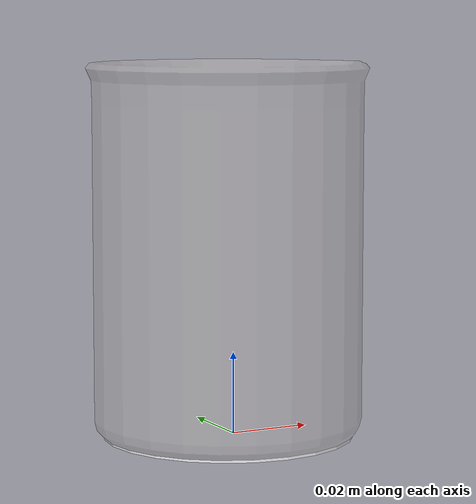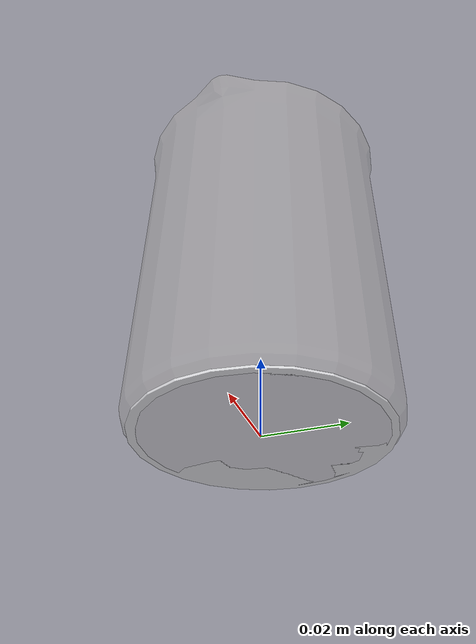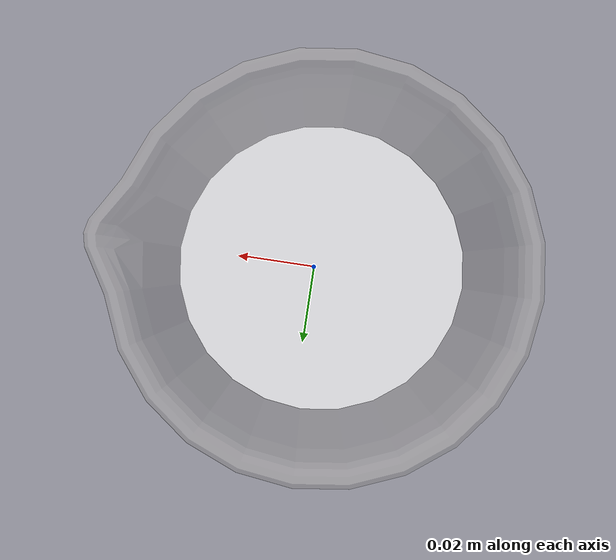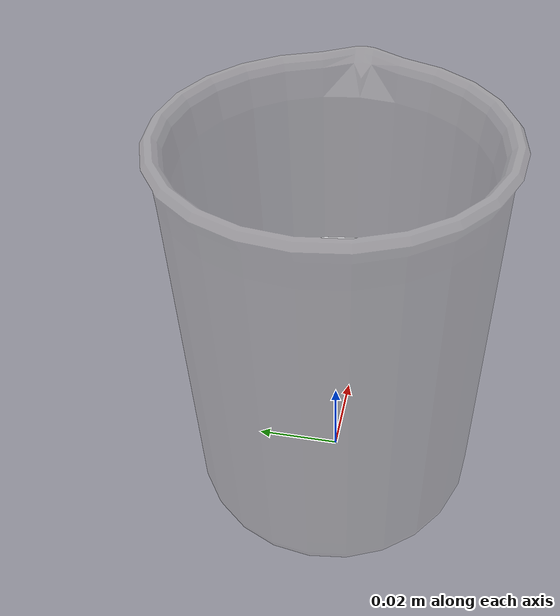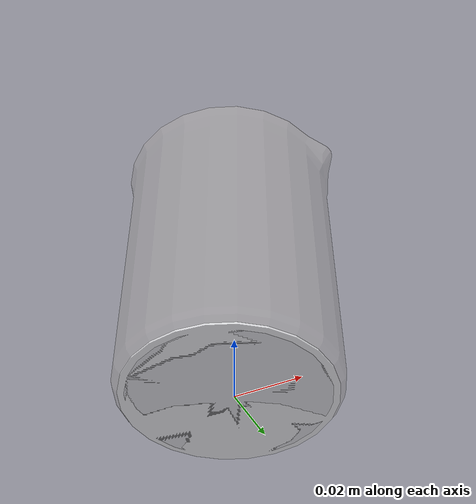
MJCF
<?xml version="1.0" ?>
<mujoco model="small_beaker">
  <compiler boundmass="0.015" boundinertia="1e-05" angle="radian"/>
  <default>
    <default class="visual">
      <geom group="2" type="mesh" contype="0" conaffinity="0" density="50"/>
    </default>
    <default class="collision">
      <geom group="3" type="mesh" density="50" friction="1 1 0.001" solimp="0.998 0.998 0.001" solref="0.01 2"/>
    </default>
    <default class="grasppoint">
      <site type="sphere" size="0.005" group="4" rgba="0 0 1 1"/>
    </default>
  </default>
  <asset>
    <texture type="2d" name="lab_beaker_a" file="lab_beaker_a.png"/>
    <material name="lab_beaker_a" texture="lab_beaker_a" specular="0.4" shininess="0.001" rgba="1 1 1 0.3"/>
    <material name="CaSO4" rgba="1 1 1 0.7"/>
    <material name="CuCl2" rgba="0.141 1.0 0.174 0.4"/>
    <material name="CuSO4" rgba="0 0.45 1 0.4"/>
    <material name="FeCl3" rgba="0.6475 0.5686 0.023 0.4"/>
    <material name="KMnO4" rgba="0.5 0 0.5 0.4"/>
    <material name="I2" rgba="0.3 0.13 0.0 0.4"/>
    <material name="K2CrO4" rgba="0.57 0.12 0.013 0.4"/>
    <material name="NaCl" rgba="1 1 1 0.3"/>
    <mesh file="small_beaker.obj" scale="0.010092491675567085 0.010092491675567085 0.010092491675567085"/>
    <mesh file="small_beaker_octagon.obj"/>
    <mesh file="small_beaker/small_beaker_collision_0.obj" scale="0.010092491675567085 0.010092491675567085 0.010092491675567085"/>
    <mesh file="small_beaker/small_beaker_collision_1.obj" scale="0.010092491675567085 0.010092491675567085 0.010092491675567085"/>
    <mesh file="small_beaker/small_beaker_collision_2.obj" scale="0.010092491675567085 0.010092491675567085 0.010092491675567085"/>
    <mesh file="small_beaker/small_beaker_collision_3.obj" scale="0.010092491675567085 0.010092491675567085 0.010092491675567085"/>
    <mesh file="small_beaker/small_beaker_collision_4.obj" scale="0.010092491675567085 0.010092491675567085 0.010092491675567085"/>
    <mesh file="small_beaker/small_beaker_collision_5.obj" scale="0.010092491675567085 0.010092491675567085 0.010092491675567085"/>
    <mesh file="small_beaker/small_beaker_collision_6.obj" scale="0.010092491675567085 0.010092491675567085 0.010092491675567085"/>
    <mesh file="small_beaker/small_beaker_collision_7.obj" scale="0.010092491675567085 0.010092491675567085 0.010092491675567085"/>
    <mesh file="small_beaker/small_beaker_collision_8.obj" scale="0.010092491675567085 0.010092491675567085 0.010092491675567085"/>
    <mesh file="small_beaker/small_beaker_collision_9.obj" scale="0.010092491675567085 0.010092491675567085 0.010092491675567085"/>
    <mesh file="small_beaker/small_beaker_collision_10.obj" scale="0.010092491675567085 0.010092491675567085 0.010092491675567085"/>
    <mesh file="small_beaker/small_beaker_collision_11.obj" scale="0.010092491675567085 0.010092491675567085 0.010092491675567085"/>
    <mesh file="small_beaker/small_beaker_collision_12.obj" scale="0.010092491675567085 0.010092491675567085 0.010092491675567085"/>
    <mesh file="small_beaker/small_beaker_collision_13.obj" scale="0.010092491675567085 0.010092491675567085 0.010092491675567085"/>
    <mesh file="small_beaker/small_beaker_collision_14.obj" scale="0.010092491675567085 0.010092491675567085 0.010092491675567085"/>
    <mesh file="small_beaker/small_beaker_collision_15.obj" scale="0.010092491675567085 0.010092491675567085 0.010092491675567085"/>
    <mesh file="small_beaker/small_beaker_collision_16.obj" scale="0.010092491675567085 0.010092491675567085 0.010092491675567085"/>
    <mesh file="small_beaker/small_beaker_collision_17.obj" scale="0.010092491675567085 0.010092491675567085 0.010092491675567085"/>
    <mesh file="small_beaker/small_beaker_collision_18.obj" scale="0.010092491675567085 0.010092491675567085 0.010092491675567085"/>
    <mesh file="small_beaker/small_beaker_collision_19.obj" scale="0.010092491675567085 0.010092491675567085 0.010092491675567085"/>
    <mesh file="small_beaker/small_beaker_collision_20.obj" scale="0.010092491675567085 0.010092491675567085 0.010092491675567085"/>
    <mesh file="small_beaker/small_beaker_collision_21.obj" scale="0.010092491675567085 0.010092491675567085 0.010092491675567085"/>
    <mesh file="small_beaker/small_beaker_collision_22.obj" scale="0.010092491675567085 0.010092491675567085 0.010092491675567085"/>
  </asset>
  <worldbody>
    <body name="small_beaker">
      <inertial pos="0 0 0.045000" mass="0.01" diaginertia="0.0008 0.0008 0.0005"/>
      <geom material="lab_beaker_a" mesh="small_beaker" class="visual"/>
      <geom mesh="small_beaker_collision_0" class="collision"/>
      <geom mesh="small_beaker_collision_1" class="collision"/>
      <geom mesh="small_beaker_collision_2" class="collision"/>
      <geom mesh="small_beaker_collision_3" class="collision"/>
      <geom mesh="small_beaker_collision_4" class="collision"/>
      <geom mesh="small_beaker_collision_5" class="collision"/>
      <geom mesh="small_beaker_collision_6" class="collision"/>
      <geom mesh="small_beaker_collision_7" class="collision"/>
      <geom mesh="small_beaker_collision_8" class="collision"/>
      <geom mesh="small_beaker_collision_9" class="collision"/>
      <geom mesh="small_beaker_collision_10" class="collision"/>
      <geom mesh="small_beaker_collision_11" class="collision"/>
      <geom mesh="small_beaker_collision_12" class="collision"/>
      <geom mesh="small_beaker_collision_13" class="collision"/>
      <geom mesh="small_beaker_collision_14" class="collision"/>
      <geom mesh="small_beaker_collision_15" class="collision"/>
      <geom mesh="small_beaker_collision_16" class="collision"/>
      <geom mesh="small_beaker_collision_17" class="collision"/>
      <geom mesh="small_beaker_collision_18" class="collision"/>
      <geom mesh="small_beaker_collision_19" class="collision"/>
      <geom mesh="small_beaker_collision_20" class="collision"/>
      <geom mesh="small_beaker_collision_21" class="collision"/>
      <geom mesh="small_beaker_collision_22" class="collision"/>
      <site class="grasppoint" pos="0.0000 0.0040 0.0650"/>
      <!-- Anti-slip plates: 2 crossing vertical plates through center. Width=diameter+2cm=0.081m, height=full beaker. -->
      <!-- Visual plates (contype=0 conaffinity=0 → rgba renders fully). Rotated 45° around Z. -->
      <!-- Collision plates: only collide with finger pads (contype=2 conaffinity=2). Rotated 45° around Z. -->
      <geom name="grip_plate_x" type="box" size="0.0105 0.005 0.0446" pos="0.0286 0.0286 0.0446" quat="0.9238795 0 0 0.3826834" contype="2" conaffinity="2" group="3" friction="1 1 0.1" density="50" solref="0.001 1"/>
      <geom name="grip_plate_y" type="box" size="0.005 0.0105 0.0446" pos="-0.0286 0.0286 0.0446" quat="0.9238795 0 0 0.3826834" contype="2" conaffinity="2" group="3" friction="1 1 0.1" density="50" solref="0.001 1"/>
      <geom name="grip_plate_x2" type="box" size="0.0105 0.005 0.0446" pos="0.0286 -0.0286 0.0446" quat="-0.9238795 0 0 0.3826834" contype="2" conaffinity="2" group="3" friction="1 1 0.1" density="50" solref="0.001 1"/>
      <geom name="grip_plate_y2" type="box" size="0.005 0.0105 0.0446" pos="-0.0286 -0.0286 0.0446" quat="-0.9238795 0 0 0.3826834" contype="2" conaffinity="2" group="3" friction="1 1 0.1" density="50" solref="0.001 1"/>
      <geom name="solution" type="cylinder" size="0.0305 0.0225" pos="-0.001494 -0.000163 0.0225" material="CaSO4" class="visual"/>
      <site name="top_site" pos="0 0 0.0892" size="0.01" rgba="1 0 0 0"/>
      <site name="bottom_site" pos="0 0 0.000000" size="0.01" rgba="0 1 0 0"/>
    </body>
  </worldbody>
</mujoco>
